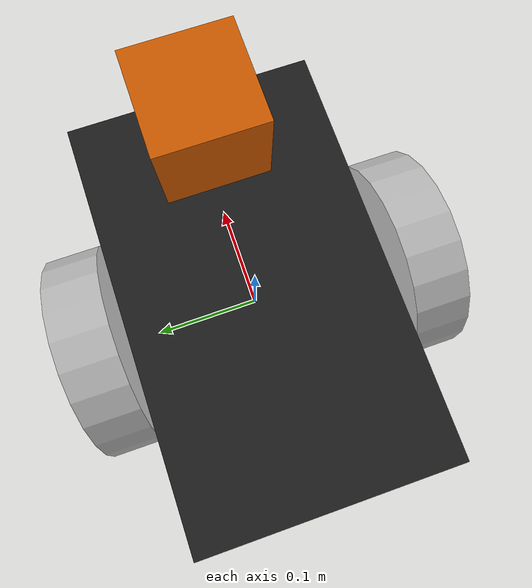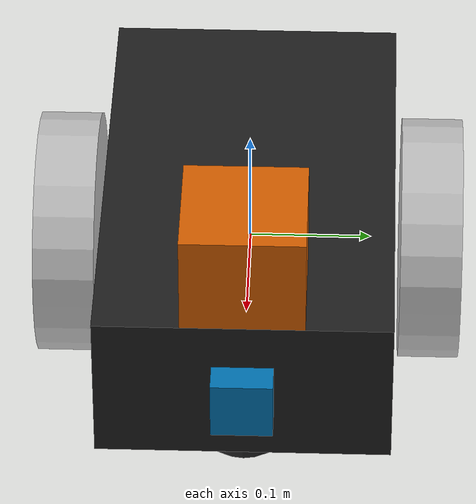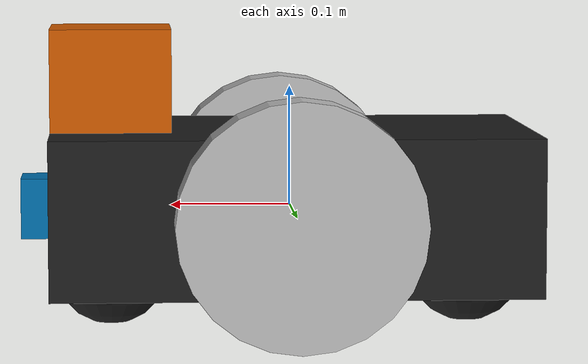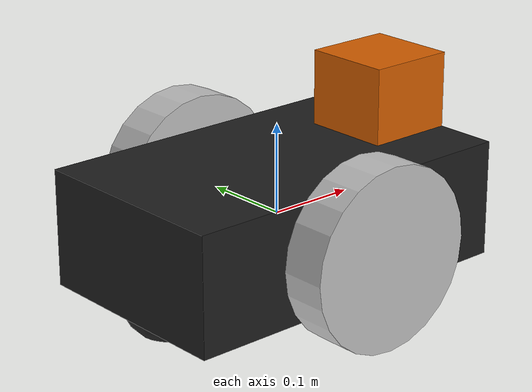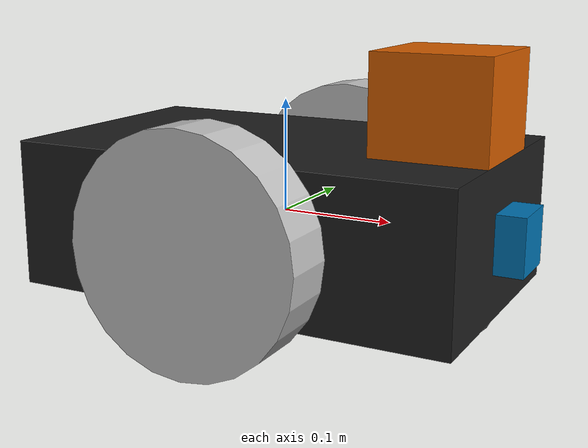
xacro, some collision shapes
<?xml version="1.0"?>
<robot name="my_robot" xmlns:xacro="http://www.ros.org/wiki/xacro">
	<xacro:include filename="$(find my_robot)/urdf/my_robot.gazebo" />
	<gazebo reference="chassis">
		<material>Gazebo/FlatBlack</material>
	</gazebo>
	<gazebo reference="right_wheel">
		<material>Gazebo/Orange</material>
	</gazebo>
	<gazebo reference="left_wheel">
		<material>Gazebo/Orange</material>
	</gazebo>

	<link name="robot_footprint"></link>
	<joint name="robot_footprint_joint" type="fixed">
		<origin xyz="0 0 0" rpy="0 0 0" />
		<parent link="robot_footprint" />
		<child link="chassis" />
	</joint>
	<link name="chassis">
		<pose>
			0 0 0.1 0 0 0
		</pose>
		<inertial>
			<mass value="15.0" />
			<origin xyz="0.0 0 0" rpy=" 0 0 0" />
			<inertia ixx="0.1" ixy="0" ixz="0" iyy="0.1" iyz="0" izz="0.1" />
		</inertial>
		<collision name="collision">
			<origin xyz="0 0 0" rpy=" 0 0 0" />
			<geometry>
				<box size=".4 .24 .13" />
			</geometry>
		</collision>
		<visual name="chassis_visual">
			<origin xyz="0 0 0" rpy=" 0 0 0" />
			<geometry>
				<box size=".4 .24 .13" />
			</geometry>
		</visual>
		<collision name="back_caster_collision">
			<origin xyz="-0.15 0 -0.05" rpy=" 0 0 0" />
			<geometry>
				<sphere radius="0.0499" />
			</geometry>
		</collision>
		<visual name="back_caster_visual">
			<origin xyz="-0.15 0 -0.05" rpy=" 0 0 0" />
			<geometry>
				<sphere radius="0.05" />
			</geometry>
		</visual>
		<collision name="front_caster_collision">
			<origin xyz="0.15 0 -0.05" rpy=" 0 0 0" />
			<geometry>
				<sphere radius="0.0499" />
			</geometry>
		</collision>
		<visual name="front_caster_visual">
			<origin xyz="0.15 0 -0.05" rpy=" 0 0 0" />
			<geometry>
				<sphere radius="0.05" />
			</geometry>
		</visual>
	</link>
	<link name="left_wheel">
		<inertial>
			<mass value="5.0" />
			<origin xyz="0 0 0" rpy="0 1.5707 1.5707" />
			<inertia ixx="0.1" ixy="0" ixz="0" iyy="0.1" iyz="0" izz="0.1" />
		</inertial>
		<collision>
			<origin xyz="0 0 0" rpy="0 1.5707 1.5707" />
			<geometry>
				<cylinder radius="0.1" length="0.05" />
			</geometry>
		</collision>
		<visual>
			<origin xyz="0 0 0" rpy="0 1.5707 1.5707" />
			<geometry>
				<cylinder radius="0.1" length="0.05" />
			</geometry>
			<material name="">
				<color rgba="0.75294 0.75294 0.75294 1" />
			</material>

		</visual>
	</link>
	<link name="right_wheel">
		<inertial>
			<mass value="5.0" />
			<origin xyz="0 0 0" rpy="0 1.5707 1.5707" />
			<inertia ixx="0.1" ixy="0" ixz="0" iyy="0.1" iyz="0" izz="0.1" />
		</inertial>
		<collision>
			<origin xyz="0 0 0" rpy="0 1.5707 1.5707" />
			<geometry>
				<cylinder radius="0.1" length="0.05" />
			</geometry>
		</collision>
		<visual>
			<origin xyz="0 0 0" rpy="0 1.5707 1.5707" />
			<geometry>
				<cylinder radius="0.1" length="0.05" />
			</geometry>
			<material name="">
				<color rgba="0.75294 0.75294 0.75294 1" />
			</material>

		</visual>
	</link>
	<joint type="continuous" name="left_wheel_hinge">
		<origin xyz="0 0.15 0" rpy="0 0 0" />
		<child link="left_wheel" />
		<parent link="chassis" />
		<axis xyz="0 1 0" rpy="0 0 0" />
		<limit effort="10000" velocity="1000" />
		<dynamics damping="1.0" friction="1.0" />
	</joint>
	<joint type="continuous" name="right_wheel_hinge">
		<origin xyz="0 -0.15 0" rpy="0 0 0" />
		<child link="right_wheel" />
		<parent link="chassis" />
		<axis xyz="0 1 0" rpy="0 0 0" />
		<limit effort="10000" velocity="1000" />
		<dynamics damping="1.0" friction="1.0" />
	</joint>
	<!-- Camera -->
	<link name="camera">
		<collision>
			<origin xyz="0 0 0" rpy="0 0 0" />
			<geometry>
				<box size="0.05 0.05 0.05" />
			</geometry>
		</collision>
		<visual>
			<origin xyz="0 0 0" rpy="0 0 0" />
			<geometry>
				<box size="0.05 0.05 0.05" />
			</geometry>
		</visual>
		<inertial>
			<mass value="0.1" />
			<origin xyz="0 0 0" rpy="0 0 0" />
			<inertia ixx="1e-6" ixy="0" ixz="0" iyy="1e-6" iyz="0" izz="1e-6" />
		</inertial>
	</link>
	<joint name="camera_joint" type="fixed">
		<axis xyz="0 1 0" />
		<origin xyz="0.2 0 0" rpy="0 0 0" />
		<parent link="chassis" />
		<child link="camera" />
	</joint>
	<link name="hokuyo">
		<inertial>
			<mass value="1e-5" />
			<inertia ixx="1e-6" ixy="0" ixz="0" iyy="1e-6" iyz="0" izz="1e-6" />
		</inertial>
		<collision>
			<origin xyz="0 0 0" rpy="0 0 0" />
			<geometry>
				<box size="0.1 0.1 0.1" />
			</geometry>
		</collision>
		<visual>
			<origin xyz="0 0 0" rpy="0 0 0" />
			<geometry>
				<mesh filename="package://my_robot/meshes/hokuyo.dae" />
			</geometry>
		</visual>
	</link>
	<joint name="hokuyo" type="fixed">
		<origin xyz="0.15 0 0.1" rpy="0 0 0" />
		<parent link="chassis" />
		<child link="hokuyo" />
		<axis xyz="0 1 0" />
	</joint>
	<joint name="camera_optical_joint" type="fixed">
		<origin xyz="0 0 0" rpy="-1.5707 0 -1.5707" />
		<parent link="camera" />
		<child link="camera_link_optical" />
	</joint>
	<link name="camera_link_optical"></link>
</robot>
